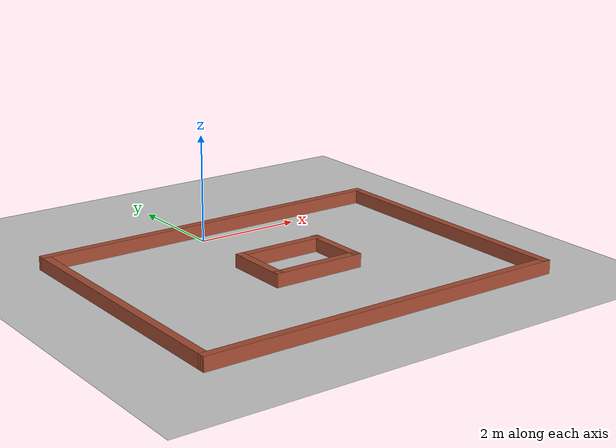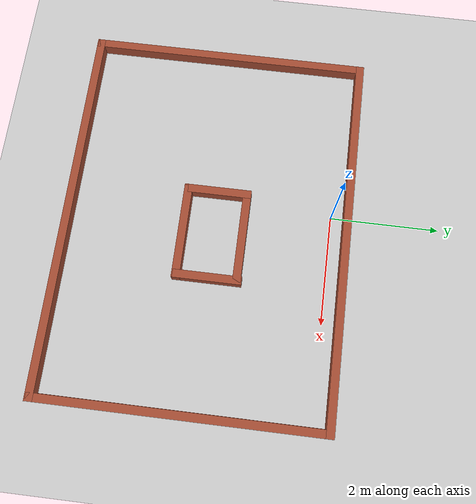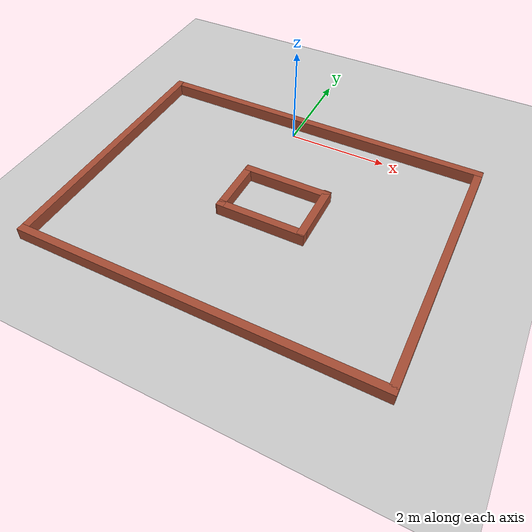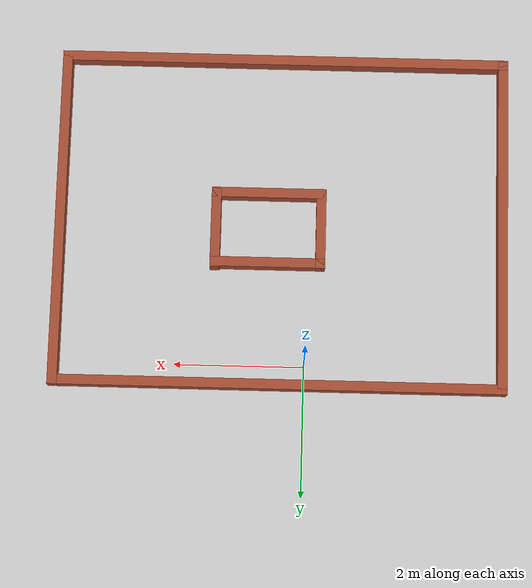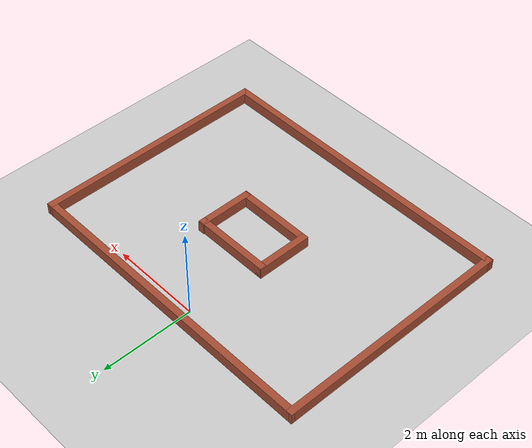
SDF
<sdf version="1.7">
 <world name="default">
  <light name="sun" type="directional">
   <pose>0 0 10 0 -0 0</pose>
   <diffuse>0.8 0.8 0.8 1</diffuse>
   <specular>0.2 0.2 0.2 1</specular>
   <attenuation>
    <range>1000</range>
    <constant>0.9</constant>
    <linear>0.01</linear>
    <quadratic>0.001</quadratic>
   </attenuation>
   <direction>-0.5 0.1 -0.9</direction>
   <spot><inner_angle>0</inner_angle><outer_angle>0</outer_angle><falloff>0</falloff></spot>
  </light>
  <model name="ground_plane">
   <static>1</static>
   <link name="link">
    <collision name="collision">
     <geometry><plane><normal>0 0 1</normal><size>100 100</size></plane></geometry>
     <surface>
      <contact><collide_bitmask>65535</collide_bitmask></contact>
      <friction><ode><mu>100</mu><mu2>50</mu2></ode></friction>
     </surface>
    </collision>
    <visual name="visual">
     <cast_shadows>0</cast_shadows>
     <geometry><plane><normal>0 0 1</normal><size>100 100</size></plane></geometry>
     <material>
      <script><uri>file://media/materials/scripts/gazebo.material</uri><name>Gazebo/Grey</name></script>
     </material>
    </visual>
   </link>
  </model>
  <gravity>0 0 -9.8</gravity>
  <magnetic_field>6e-06 2.3e-05 -4.2e-05</magnetic_field>
  <atmosphere type="adiabatic"/>
  <physics type="ode">
   <max_step_size>0.001</max_step_size>
   <real_time_factor>1</real_time_factor>
   <real_time_update_rate>1000</real_time_update_rate>
  </physics>
  <scene><ambient>0.4 0.4 0.4 1</ambient><background>0.7 0.7 0.7 1</background><shadows>1</shadows></scene>
  <spherical_coordinates>
   <surface_model>EARTH_WGS84</surface_model>
   <latitude_deg>0</latitude_deg>
   <longitude_deg>0</longitude_deg>
   <elevation>0</elevation>
   <heading_deg>0</heading_deg>
  </spherical_coordinates>
  <model name="walls">
   <pose>0.39753 -2.27361 0 0 -0 0</pose>
   <link name="Wall_0">
    <collision name="Wall_0_Collision">
     <geometry><box><size>7 0.15 0.25</size></box></geometry>
     <pose>0 0 0.125 0 -0 0</pose>
    </collision>
    <visual name="Wall_0_Visual">
     <pose>0 0 0.125 0 -0 0</pose>
     <geometry><box><size>7 0.15 0.25</size></box></geometry>
     <material>
      <script><uri>file://media/materials/scripts/gazebo.material</uri><name>Gazebo/Bricks</name></script>
      <ambient>1 1 1 1</ambient>
     </material>
     <meta><layer>0</layer></meta>
    </visual>
    <pose>0.002529 2.57357 0 0 -0 0</pose>
   </link>
   <link name="Wall_1">
    <collision name="Wall_1_Collision">
     <geometry><box><size>5.27972 0.15 0.25</size></box></geometry>
     <pose>0 0 0.125 0 -0 0</pose>
    </collision>
    <visual name="Wall_1_Visual">
     <pose>0 0 0.125 0 -0 0</pose>
     <geometry><box><size>5.27972 0.15 0.25</size></box></geometry>
     <material>
      <script><uri>file://media/materials/scripts/gazebo.material</uri><name>Gazebo/Bricks</name></script>
      <ambient>1 1 1 1</ambient>
     </material>
     <meta><layer>0</layer></meta>
    </visual>
    <pose>3.425 0.008708 0 0 -0 -1.57178</pose>
   </link>
   <link name="Wall_2">
    <collision name="Wall_2_Collision">
     <geometry><box><size>7 0.15 0.25</size></box></geometry>
     <pose>0 0 0.125 0 -0 0</pose>
    </collision>
    <visual name="Wall_2_Visual">
     <pose>0 0 0.125 0 -0 0</pose>
     <geometry><box><size>7 0.15 0.25</size></box></geometry>
     <material>
      <script><uri>file://media/materials/scripts/gazebo.material</uri><name>Gazebo/Bricks</name></script>
      <ambient>1 1 1 1</ambient>
     </material>
     <meta><layer>0</layer></meta>
    </visual>
    <pose>-0.00253 -2.57364 0 0 -0 3.14159</pose>
   </link>
   <link name="Wall_3">
    <collision name="Wall_3_Collision">
     <geometry><box><size>5.27972 0.15 0.25</size></box></geometry>
     <pose>0 0 0.125 0 -0 0</pose>
    </collision>
    <visual name="Wall_3_Visual">
     <pose>0 0 0.125 0 -0 0</pose>
     <geometry><box><size>5.27972 0.15 0.25</size></box></geometry>
     <material>
      <script><uri>file://media/materials/scripts/gazebo.material</uri><name>Gazebo/Bricks</name></script>
      <ambient>1 1 1 1</ambient>
     </material>
     <meta><layer>0</layer></meta>
    </visual>
    <pose>-3.425 0.008708 0 0 -0 1.56981</pose>
   </link>
   <link name="Wall_5">
    <collision name="Wall_5_Collision">
     <geometry><box><size>1.76028 0.15 0.25</size></box></geometry>
     <pose>0 0 0.125 0 -0 0</pose>
    </collision>
    <visual name="Wall_5_Visual">
     <pose>0 0 0.125 0 -0 0</pose>
     <geometry><box><size>1.76028 0.15 0.25</size></box></geometry>
     <material>
      <script><uri>file://media/materials/scripts/gazebo.material</uri><name>Gazebo/Bricks</name></script>
      <ambient>1 1 1 1</ambient>
     </material>
     <meta><layer>0</layer></meta>
    </visual>
    <pose>0.20745 0.683608 0 0 -0 0</pose>
   </link>
   <link name="Wall_6">
    <collision name="Wall_6_Collision">
     <geometry><box><size>1.25 0.15 0.25</size></box></geometry>
     <pose>0 0 0.125 0 -0 0</pose>
    </collision>
    <visual name="Wall_6_Visual">
     <pose>0 0 0.125 0 -0 0</pose>
     <geometry><box><size>1.25 0.15 0.25</size></box></geometry>
     <material>
      <script><uri>file://media/materials/scripts/gazebo.material</uri><name>Gazebo/Bricks</name></script>
      <ambient>1 1 1 1</ambient>
     </material>
     <meta><layer>0</layer></meta>
    </visual>
    <pose>1.01259 0.151098 0 0 -0 -1.5708</pose>
   </link>
   <link name="Wall_7">
    <collision name="Wall_7_Collision">
     <geometry><box><size>1.76028 0.15 0.25</size></box></geometry>
     <pose>0 0 0.125 0 -0 0</pose>
    </collision>
    <visual name="Wall_7_Visual">
     <pose>0 0 0.125 0 -0 0</pose>
     <geometry><box><size>1.76028 0.15 0.25</size></box></geometry>
     <material>
      <script><uri>file://media/materials/scripts/gazebo.material</uri><name>Gazebo/Bricks</name></script>
      <ambient>1 1 1 1</ambient>
     </material>
     <meta><layer>0</layer></meta>
    </visual>
    <pose>0.20745 -0.416392 0 0 -0 -3.14159</pose>
   </link>
   <link name="Wall_8">
    <collision name="Wall_8_Collision">
     <geometry><box><size>1.25 0.15 0.25</size></box></geometry>
     <pose>0 0 0.125 0 -0 0</pose>
    </collision>
    <visual name="Wall_8_Visual">
     <pose>0 0 0.125 0 -0 0</pose>
     <geometry><box><size>1.25 0.15 0.25</size></box></geometry>
     <material>
      <script><uri>file://media/materials/scripts/gazebo.material</uri><name>Gazebo/Bricks</name></script>
      <ambient>1 1 1 1</ambient>
     </material>
     <meta><layer>0</layer></meta>
    </visual>
    <pose>-0.615179 0.133608 0 0 -0 1.5708</pose>
   </link>
   <static>1</static>
  </model>
 </world>
</sdf>
